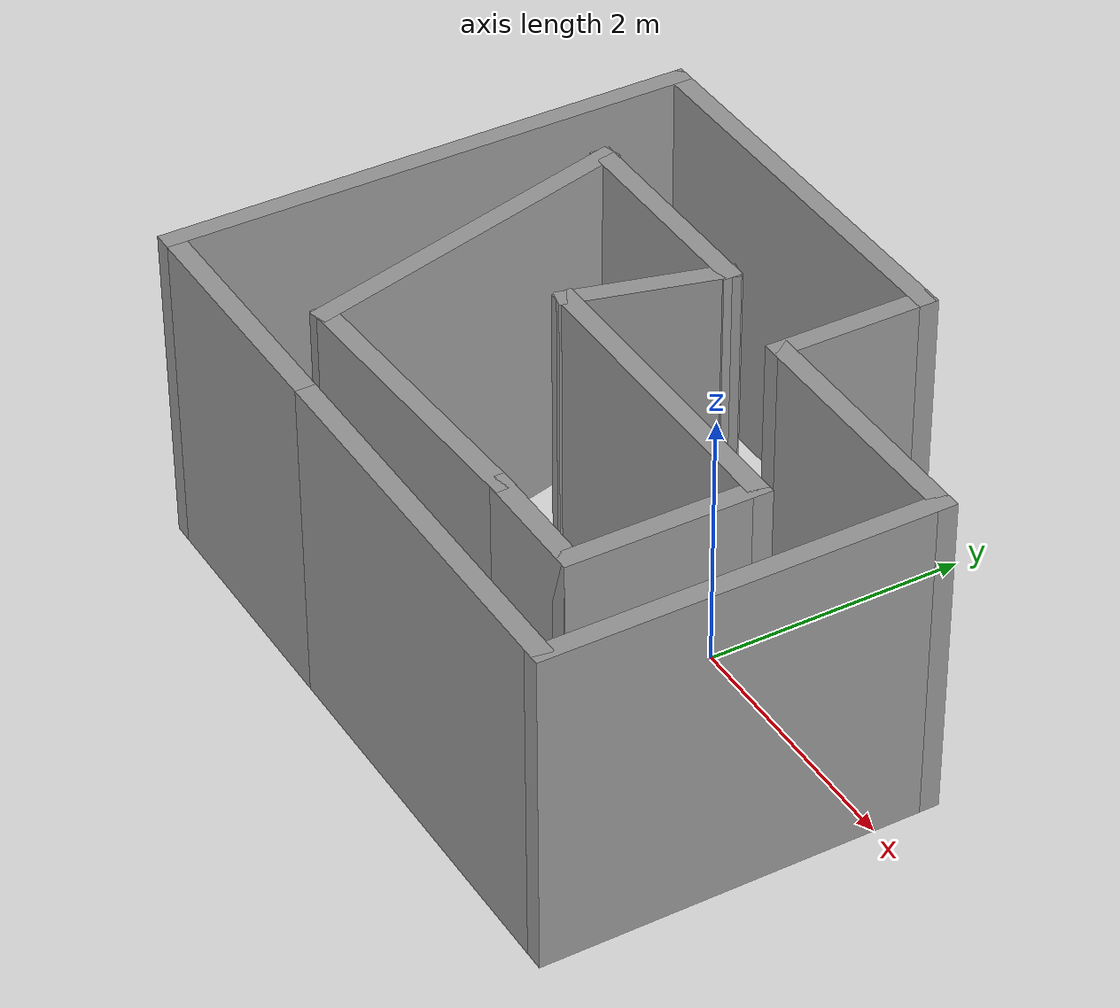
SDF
<?xml version='1.0'?>
<sdf version='1.6'>
  <model name='mymap6'>
    <pose frame=''>-0.545 -0.445 0 0 -0 0</pose>
    <link name='Wall_12'>
      <collision name='Wall_12_Collision'>
        <geometry>
          <box>
            <size>3.25 0.15 2.5</size>
          </box>
        </geometry>
        <pose frame=''>0 0 1.25 0 -0 0</pose>
      </collision>
      <visual name='Wall_12_Visual'>
        <pose frame=''>0 0 1.25 0 -0 0</pose>
        <geometry>
          <box>
            <size>3.25 0.15 2.5</size>
          </box>
        </geometry>
        <material>
          <script>
            <uri>file://media/materials/scripts/gazebo.material</uri>
            <name>Gazebo/Grey</name>
          </script>
          <ambient>1 1 1 1</ambient>
        </material>
      </visual>
      <pose frame=''>0.925 -1.975 0 0 -0 0</pose>
    </link>
    <link name='Wall_13'>
      <collision name='Wall_13_Collision'>
        <geometry>
          <box>
            <size>3 0.15 2.5</size>
          </box>
        </geometry>
        <pose frame=''>0 0 1.25 0 -0 0</pose>
      </collision>
      <visual name='Wall_13_Visual'>
        <pose frame=''>0 0 1.25 0 -0 0</pose>
        <geometry>
          <box>
            <size>3 0.15 2.5</size>
          </box>
        </geometry>
        <material>
          <script>
            <uri>file://media/materials/scripts/gazebo.material</uri>
            <name>Gazebo/Grey</name>
          </script>
          <ambient>1 1 1 1</ambient>
        </material>
      </visual>
      <pose frame=''>2.475 -0.55 0 0 -0 1.5708</pose>
    </link>
    <link name='Wall_14'>
      <collision name='Wall_14_Collision'>
        <geometry>
          <box>
            <size>2 0.15 2.5</size>
          </box>
        </geometry>
        <pose frame=''>0 0 1.25 0 -0 0</pose>
      </collision>
      <visual name='Wall_14_Visual'>
        <pose frame=''>0 0 1.25 0 -0 0</pose>
        <geometry>
          <box>
            <size>2 0.15 2.5</size>
          </box>
        </geometry>
        <material>
          <script>
            <uri>file://media/materials/scripts/gazebo.material</uri>
            <name>Gazebo/Grey</name>
          </script>
          <ambient>1 1 1 1</ambient>
        </material>
      </visual>
      <pose frame=''>1.55 0.875 0 0 -0 3.14159</pose>
    </link>
    <link name='Wall_16'>
      <collision name='Wall_16_Collision'>
        <geometry>
          <box>
            <size>1.25 0.15 2.5</size>
          </box>
        </geometry>
        <pose frame=''>0 0 1.25 0 -0 0</pose>
      </collision>
      <visual name='Wall_16_Visual'>
        <pose frame=''>0 0 1.25 0 -0 0</pose>
        <geometry>
          <box>
            <size>1.25 0.15 2.5</size>
          </box>
        </geometry>
        <material>
          <script>
            <uri>file://media/materials/scripts/gazebo.material</uri>
            <name>Gazebo/Grey</name>
          </script>
          <ambient>1 1 1 1</ambient>
        </material>
      </visual>
      <pose frame=''>0.625 1.425 0 0 -0 1.5708</pose>
    </link>
    <link name='Wall_17'>
      <collision name='Wall_17_Collision'>
        <geometry>
          <box>
            <size>3.25 0.15 2.5</size>
          </box>
        </geometry>
        <pose frame=''>0 0 1.25 0 -0 0</pose>
      </collision>
      <visual name='Wall_17_Visual'>
        <pose frame=''>0 0 1.25 0 -0 0</pose>
        <geometry>
          <box>
            <size>3.25 0.15 2.5</size>
          </box>
        </geometry>
        <material>
          <script>
            <uri>file://media/materials/scripts/gazebo.material</uri>
            <name>Gazebo/Grey</name>
          </script>
          <ambient>1 1 1 1</ambient>
        </material>
      </visual>
      <pose frame=''>-0.925 1.975 0 0 -0 3.14159</pose>
    </link>
    <link name='Wall_21'>
      <collision name='Wall_21_Collision'>
        <geometry>
          <box>
            <size>2 0.15 2.5</size>
          </box>
        </geometry>
        <pose frame=''>0 0 1.25 0 -0 0</pose>
      </collision>
      <visual name='Wall_21_Visual'>
        <pose frame=''>0 0 1.25 0 -0 0</pose>
        <geometry>
          <box>
            <size>2 0.15 2.5</size>
          </box>
        </geometry>
        <material>
          <script>
            <uri>file://media/materials/scripts/gazebo.material</uri>
            <name>Gazebo/Grey</name>
          </script>
          <ambient>1 1 1 1</ambient>
        </material>
      </visual>
      <pose frame=''>-1.55 -1.975 0 0 -0 3.14159</pose>
    </link>
    <link name='Wall_22'>
      <collision name='Wall_22_Collision'>
        <geometry>
          <box>
            <size>4.1 0.15 2.5</size>
          </box>
        </geometry>
        <pose frame=''>0 0 1.25 0 -0 0</pose>
      </collision>
      <visual name='Wall_22_Visual'>
        <pose frame=''>0 0 1.25 0 -0 0</pose>
        <geometry>
          <box>
            <size>4.1 0.15 2.5</size>
          </box>
        </geometry>
        <material>
          <script>
            <uri>file://media/materials/scripts/gazebo.material</uri>
            <name>Gazebo/Grey</name>
          </script>
          <ambient>1 1 1 1</ambient>
        </material>
      </visual>
      <pose frame=''>-2.475 0 0 0 -0 1.5708</pose>
    </link>
    <link name='Wall_3'>
      <collision name='Wall_3_Collision'>
        <geometry>
          <box>
            <size>1 0.15 2.5</size>
          </box>
        </geometry>
        <pose frame=''>0 0 1.25 0 -0 0</pose>
      </collision>
      <visual name='Wall_3_Visual'>
        <pose frame=''>0 0 1.25 0 -0 0</pose>
        <geometry>
          <box>
            <size>1 0.15 2.5</size>
          </box>
        </geometry>
        <material>
          <script>
            <uri>file://media/materials/scripts/gazebo.material</uri>
            <name>Gazebo/Grey</name>
          </script>
          <ambient>1 1 1 1</ambient>
        </material>
      </visual>
      <pose frame=''>1.36 -1.385 0 0 -0 0</pose>
    </link>
    <link name='Wall_4'>
      <collision name='Wall_4_Collision'>
        <geometry>
          <box>
            <size>1.5 0.15 2.5</size>
          </box>
        </geometry>
        <pose frame=''>0 0 1.25 0 -0 0</pose>
      </collision>
      <visual name='Wall_4_Visual'>
        <pose frame=''>0 0 1.25 0 -0 0</pose>
        <geometry>
          <box>
            <size>1.5 0.15 2.5</size>
          </box>
        </geometry>
        <material>
          <script>
            <uri>file://media/materials/scripts/gazebo.material</uri>
            <name>Gazebo/Grey</name>
          </script>
          <ambient>1 1 1 1</ambient>
        </material>
      </visual>
      <pose frame=''>1.785 -0.71 0 0 -0 1.5708</pose>
    </link>
    <link name='Wall_5'>
      <collision name='Wall_5_Collision'>
        <geometry>
          <box>
            <size>2.5 0.15 2.5</size>
          </box>
        </geometry>
        <pose frame=''>0 0 1.25 0 -0 0</pose>
      </collision>
      <visual name='Wall_5_Visual'>
        <pose frame=''>0 0 1.25 0 -0 0</pose>
        <geometry>
          <box>
            <size>2.5 0.15 2.5</size>
          </box>
        </geometry>
        <material>
          <script>
            <uri>file://media/materials/scripts/gazebo.material</uri>
            <name>Gazebo/Grey</name>
          </script>
          <ambient>1 1 1 1</ambient>
        </material>
      </visual>
      <pose frame=''>0.61 -0.035 0 0 -0 3.14159</pose>
    </link>
    <link name='Wall_6'>
      <collision name='Wall_6_Collision'>
        <geometry>
          <box>
            <size>1.25 0.15 2.5</size>
          </box>
        </geometry>
        <pose frame=''>0 0 1.25 0 -0 0</pose>
      </collision>
      <visual name='Wall_6_Visual'>
        <pose frame=''>0 0 1.25 0 -0 0</pose>
        <geometry>
          <box>
            <size>1.25 0.15 2.5</size>
          </box>
        </geometry>
        <material>
          <script>
            <uri>file://media/materials/scripts/gazebo.material</uri>
            <name>Gazebo/Grey</name>
          </script>
          <ambient>1 1 1 1</ambient>
        </material>
      </visual>
      <pose frame=''>-0.422649 0.496259 0 0 -0 1.309</pose>
    </link>
    <link name='Wall_7'>
      <collision name='Wall_7_Collision'>
        <geometry>
          <box>
            <size>1.75 0.15 2.5</size>
          </box>
        </geometry>
        <pose frame=''>0 0 1.25 0 -0 0</pose>
      </collision>
      <visual name='Wall_7_Visual'>
        <pose frame=''>0 0 1.25 0 -0 0</pose>
        <geometry>
          <box>
            <size>1.75 0.15 2.5</size>
          </box>
        </geometry>
        <material>
          <script>
            <uri>file://media/materials/scripts/gazebo.material</uri>
            <name>Gazebo/Grey</name>
          </script>
          <ambient>1 1 1 1</ambient>
        </material>
      </visual>
      <pose frame=''>-1.0803 1.02752 0 0 -0 3.14159</pose>
    </link>
    <link name='Wall_8'>
      <collision name='Wall_8_Collision'>
        <geometry>
          <box>
            <size>2.75 0.15 2.5</size>
          </box>
        </geometry>
        <pose frame=''>0 0 1.25 0 -0 0</pose>
      </collision>
      <visual name='Wall_8_Visual'>
        <pose frame=''>0 0 1.25 0 -0 0</pose>
        <geometry>
          <box>
            <size>2.75 0.15 2.5</size>
          </box>
        </geometry>
        <material>
          <script>
            <uri>file://media/materials/scripts/gazebo.material</uri>
            <name>Gazebo/Grey</name>
          </script>
          <ambient>1 1 1 1</ambient>
        </material>
      </visual>
      <pose frame=''>-1.54383 -0.228185 0 0 0 -1.309</pose>
    </link>
    <link name='Wall_9'>
      <collision name='Wall_9_Collision'>
        <geometry>
          <box>
            <size>2.29465 0.15 2.5</size>
          </box>
        </geometry>
        <pose frame=''>0 0 1.25 0 -0 0</pose>
      </collision>
      <visual name='Wall_9_Visual'>
        <pose frame=''>0 0 1.25 0 -0 0</pose>
        <geometry>
          <box>
            <size>2.29465 0.15 2.5</size>
          </box>
        </geometry>
        <material>
          <script>
            <uri>file://media/materials/scripts/gazebo.material</uri>
            <name>Gazebo/Grey</name>
          </script>
          <ambient>1 1 1 1</ambient>
        </material>
      </visual>
      <pose frame=''>-0.136185 -1.43444 0 0 -0 0.046126</pose>
    </link>
    <static>1</static>
  </model>
</sdf>
